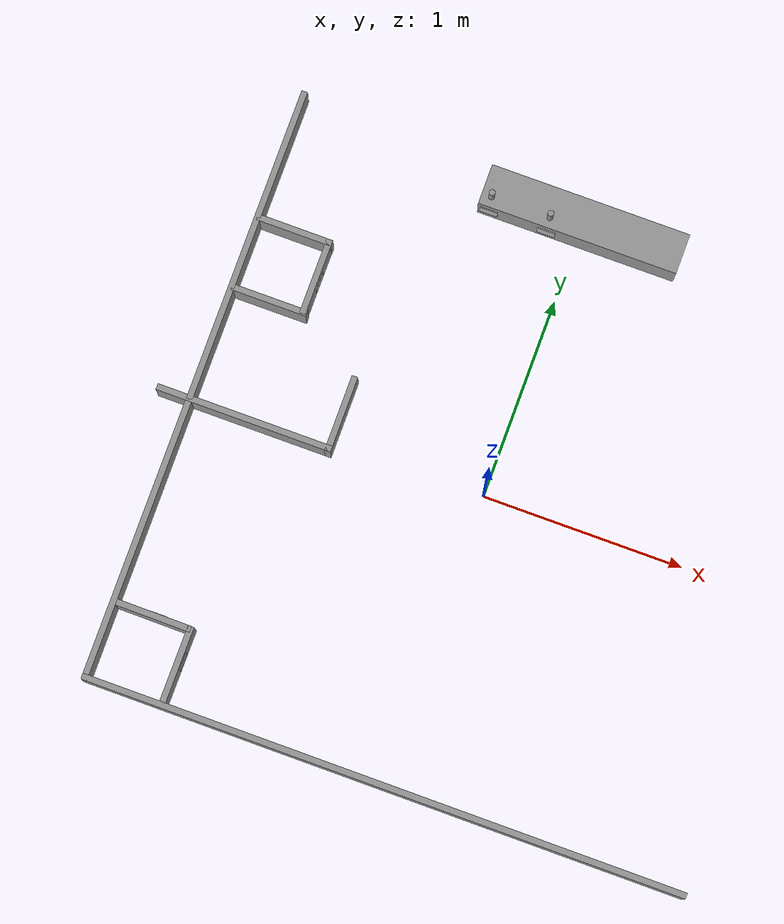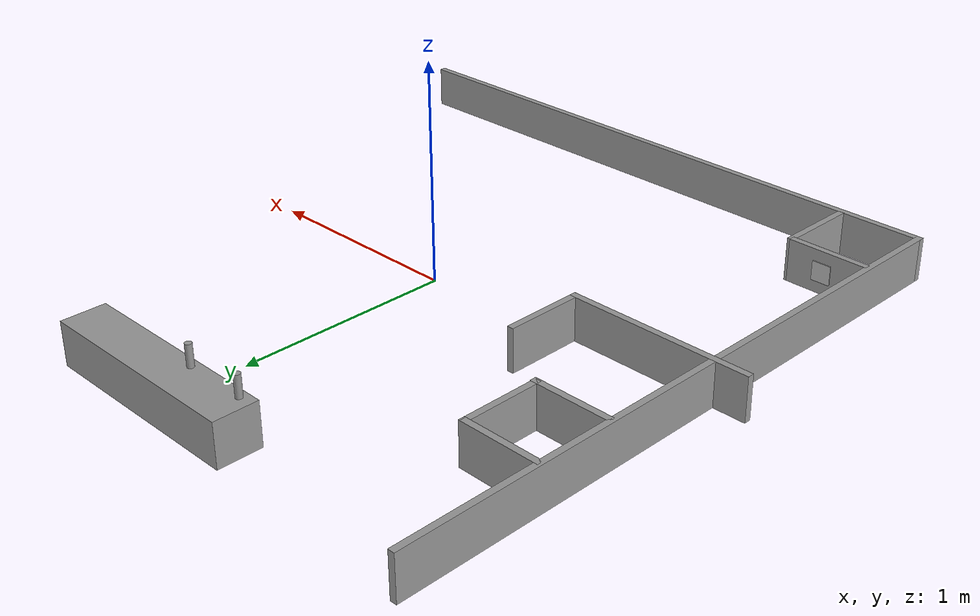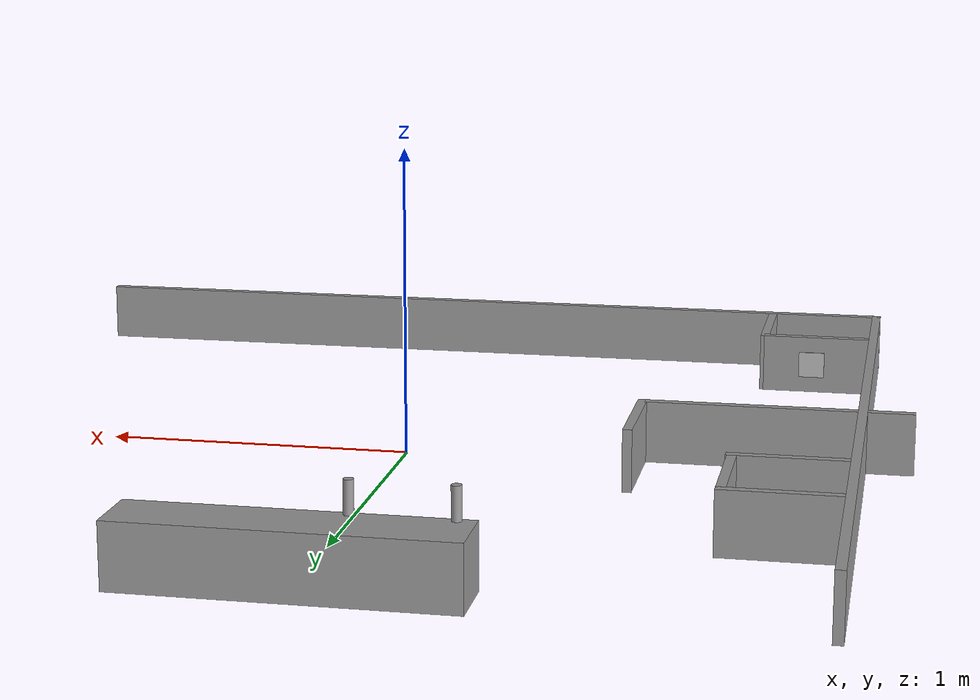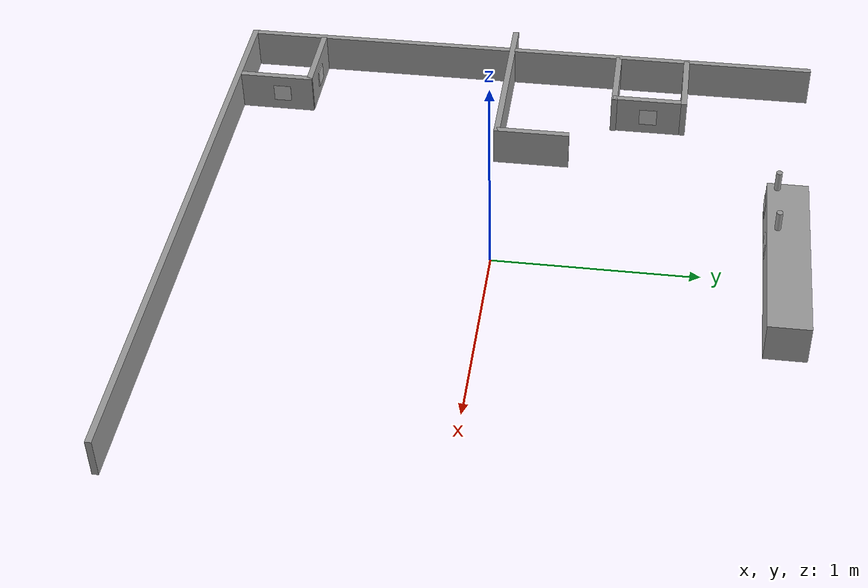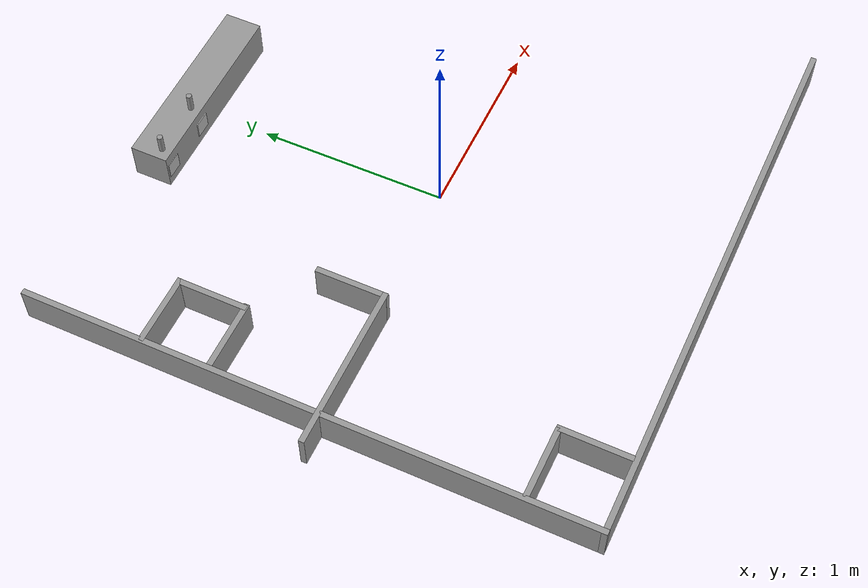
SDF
<sdf version="1.6">
 <model name="course">
  <link name="Wall_11">
   <pose>-0.764031 0.114894 0 0 0 -1.5708</pose>
   <inertial>
    <inertia><ixx>1</ixx><ixy>0</ixy><ixz>0</ixz><iyy>1</iyy><iyz>0</iyz><izz>1</izz></inertia>
    <mass>1</mass>
   </inertial>
   <visual name="Wall_11_Visual">
    <pose>0 0 0.1 0 -0 0</pose>
    <geometry><box><size>0.380343 0.03 0.2</size></box></geometry>
    <material>
     <script><uri>file://media/materials/scripts/gazebo.material</uri><name>Gazebo/Grey</name></script>
     <ambient>1 1 1 1</ambient>
     <diffuse>0.7 0.7 0.7 1</diffuse>
     <specular>0.01 0.01 0.01 1</specular>
     <emissive>0 0 0 1</emissive>
    </material>
   </visual>
   <collision name="Wall_11_Collision">
    <pose>0 0 0.1 0 -0 0</pose>
    <geometry><box><size>0.380343 0.03 0.2</size></box></geometry>
    <surface>
     <friction>
      <ode><mu>1</mu><mu2>1</mu2><fdir1>0 0 0</fdir1><slip1>0</slip1><slip2>0</slip2></ode>
      <torsional>
       <coefficient>1</coefficient>
       <patch_radius>0</patch_radius>
       <surface_radius>0</surface_radius>
       <use_patch_radius>1</use_patch_radius>
       <ode><slip>0</slip></ode>
      </torsional>
     </friction>
     <bounce><restitution_coefficient>0</restitution_coefficient><threshold>1e+06</threshold></bounce>
     <contact>
      <collide_without_contact>0</collide_without_contact>
      <collide_without_contact_bitmask>1</collide_without_contact_bitmask>
      <collide_bitmask>1</collide_bitmask>
      <ode>
       <soft_cfm>0</soft_cfm>
       <soft_erp>0.2</soft_erp>
       <kp>1e+13</kp>
       <kd>1</kd>
       <max_vel>0.01</max_vel>
       <min_depth>0</min_depth>
      </ode>
      <bullet>
       <split_impulse>1</split_impulse>
       <split_impulse_penetration_threshold>-0.01</split_impulse_penetration_threshold>
       <soft_cfm>0</soft_cfm>
       <soft_erp>0.2</soft_erp>
       <kp>1e+13</kp>
       <kd>1</kd>
      </bullet>
     </contact>
    </surface>
   </collision>
   <static>1</static>
  </link>
  <link name="Wall_11_clone">
   <pose>-1.27339 0.511234 0 0 -0 -0.0008</pose>
   <inertial>
    <inertia><ixx>1</ixx><ixy>0</ixy><ixz>0</ixz><iyy>1</iyy><iyz>0</iyz><izz>1</izz></inertia>
    <mass>1</mass>
   </inertial>
   <visual name="Wall_11_Visual">
    <pose>0 0 0.1 0 -0 0</pose>
    <geometry><box><size>0.380343 0.03 0.2</size></box></geometry>
    <material>
     <script><uri>file://media/materials/scripts/gazebo.material</uri><name>Gazebo/Grey</name></script>
     <ambient>1 1 1 1</ambient>
     <diffuse>0.7 0.7 0.7 1</diffuse>
     <specular>0.01 0.01 0.01 1</specular>
     <emissive>0 0 0 1</emissive>
     <shader type="pixel"/>
    </material>
   </visual>
   <collision name="Wall_11_Collision">
    <pose>0 0 0.1 0 -0 0</pose>
    <geometry><box><size>0.380343 0.03 0.2</size></box></geometry>
    <surface>
     <friction>
      <ode><mu>1</mu><mu2>1</mu2><fdir1>0 0 0</fdir1><slip1>0</slip1><slip2>0</slip2></ode>
      <torsional>
       <coefficient>1</coefficient>
       <patch_radius>0</patch_radius>
       <surface_radius>0</surface_radius>
       <use_patch_radius>1</use_patch_radius>
       <ode><slip>0</slip></ode>
      </torsional>
     </friction>
     <bounce><restitution_coefficient>0</restitution_coefficient><threshold>1e+06</threshold></bounce>
     <contact>
      <collide_without_contact>0</collide_without_contact>
      <collide_without_contact_bitmask>1</collide_without_contact_bitmask>
      <collide_bitmask>1</collide_bitmask>
      <ode>
       <soft_cfm>0</soft_cfm>
       <soft_erp>0.2</soft_erp>
       <kp>1e+13</kp>
       <kd>1</kd>
       <max_vel>0.01</max_vel>
       <min_depth>0</min_depth>
      </ode>
      <bullet>
       <split_impulse>1</split_impulse>
       <split_impulse_penetration_threshold>-0.01</split_impulse_penetration_threshold>
       <soft_cfm>0</soft_cfm>
       <soft_erp>0.2</soft_erp>
       <kp>1e+13</kp>
       <kd>1</kd>
      </bullet>
     </contact>
    </surface>
   </collision>
   <static>1</static>
  </link>
  <link name="Wall_11_clone_clone">
   <pose>-1.10256 0.692997 0 0 -0 1.5692</pose>
   <inertial>
    <inertia><ixx>1</ixx><ixy>0</ixy><ixz>0</ixz><iyy>1</iyy><iyz>0</iyz><izz>1</izz></inertia>
    <mass>1</mass>
   </inertial>
   <visual name="Wall_11_Visual">
    <pose>0 0 0.1 0 -0 0</pose>
    <geometry><box><size>0.380343 0.03 0.2</size></box></geometry>
    <material>
     <script><uri>file://media/materials/scripts/gazebo.material</uri><name>Gazebo/Grey</name></script>
     <ambient>1 1 1 1</ambient>
     <diffuse>0.7 0.7 0.7 1</diffuse>
     <specular>0.01 0.01 0.01 1</specular>
     <emissive>0 0 0 1</emissive>
     <shader type="pixel"/>
    </material>
   </visual>
   <collision name="Wall_11_Collision">
    <pose>0 0 0.1 0 -0 0</pose>
    <geometry><box><size>0.380343 0.03 0.2</size></box></geometry>
    <surface>
     <friction>
      <ode><mu>1</mu><mu2>1</mu2><fdir1>0 0 0</fdir1><slip1>0</slip1><slip2>0</slip2></ode>
      <torsional>
       <coefficient>1</coefficient>
       <patch_radius>0</patch_radius>
       <surface_radius>0</surface_radius>
       <use_patch_radius>1</use_patch_radius>
       <ode><slip>0</slip></ode>
      </torsional>
     </friction>
     <bounce><restitution_coefficient>0</restitution_coefficient><threshold>1e+06</threshold></bounce>
     <contact>
      <collide_without_contact>0</collide_without_contact>
      <collide_without_contact_bitmask>1</collide_without_contact_bitmask>
      <collide_bitmask>1</collide_bitmask>
      <ode>
       <soft_cfm>0</soft_cfm>
       <soft_erp>0.2</soft_erp>
       <kp>1e+13</kp>
       <kd>1</kd>
       <max_vel>0.01</max_vel>
       <min_depth>0</min_depth>
      </ode>
      <bullet>
       <split_impulse>1</split_impulse>
       <split_impulse_penetration_threshold>-0.01</split_impulse_penetration_threshold>
       <soft_cfm>0</soft_cfm>
       <soft_erp>0.2</soft_erp>
       <kp>1e+13</kp>
       <kd>1</kd>
      </bullet>
     </contact>
    </surface>
   </collision>
   <static>1</static>
  </link>
  <link name="Wall_11_clone_clone_clone">
   <pose>-1.27687 0.869348 0 0 -0 3.1392</pose>
   <inertial>
    <inertia><ixx>1</ixx><ixy>0</ixy><ixz>0</ixz><iyy>1</iyy><iyz>0</iyz><izz>1</izz></inertia>
    <mass>1</mass>
   </inertial>
   <visual name="Wall_11_Visual">
    <pose>0 0 0.1 0 -0 0</pose>
    <geometry><box><size>0.380343 0.03 0.2</size></box></geometry>
    <material>
     <script><uri>file://media/materials/scripts/gazebo.material</uri><name>Gazebo/Grey</name></script>
     <ambient>1 1 1 1</ambient>
     <diffuse>0.7 0.7 0.7 1</diffuse>
     <specular>0.01 0.01 0.01 1</specular>
     <emissive>0 0 0 1</emissive>
     <shader type="pixel"/>
    </material>
   </visual>
   <collision name="Wall_11_Collision">
    <pose>0 0 0.1 0 -0 0</pose>
    <geometry><box><size>0.380343 0.03 0.2</size></box></geometry>
    <surface>
     <friction>
      <ode><mu>1</mu><mu2>1</mu2><fdir1>0 0 0</fdir1><slip1>0</slip1><slip2>0</slip2></ode>
      <torsional>
       <coefficient>1</coefficient>
       <patch_radius>0</patch_radius>
       <surface_radius>0</surface_radius>
       <use_patch_radius>1</use_patch_radius>
       <ode><slip>0</slip></ode>
      </torsional>
     </friction>
     <bounce><restitution_coefficient>0</restitution_coefficient><threshold>1e+06</threshold></bounce>
     <contact>
      <collide_without_contact>0</collide_without_contact>
      <collide_without_contact_bitmask>1</collide_without_contact_bitmask>
      <collide_bitmask>1</collide_bitmask>
      <ode>
       <soft_cfm>0</soft_cfm>
       <soft_erp>0.2</soft_erp>
       <kp>1e+13</kp>
       <kd>1</kd>
       <max_vel>0.01</max_vel>
       <min_depth>0</min_depth>
      </ode>
      <bullet>
       <split_impulse>1</split_impulse>
       <split_impulse_penetration_threshold>-0.01</split_impulse_penetration_threshold>
       <soft_cfm>0</soft_cfm>
       <soft_erp>0.2</soft_erp>
       <kp>1e+13</kp>
       <kd>1</kd>
      </bullet>
     </contact>
    </surface>
   </collision>
   <static>1</static>
  </link>
  <link name="Wall_11_clone_clone_clone_clone_clone_clone_clone_clone">
   <pose>-1.07993 -1.26306 0 0 0 -1.57716</pose>
   <inertial>
    <inertia><ixx>1</ixx><ixy>0</ixy><ixz>0</ixz><iyy>1</iyy><iyz>0</iyz><izz>1</izz></inertia>
    <mass>1</mass>
   </inertial>
   <visual name="Wall_11_Visual">
    <pose>0 0 0.1 0 -0 0</pose>
    <geometry><box><size>0.380343 0.03 0.2</size></box></geometry>
    <material>
     <script><uri>file://media/materials/scripts/gazebo.material</uri><name>Gazebo/Grey</name></script>
     <ambient>1 1 1 1</ambient>
     <diffuse>0.7 0.7 0.7 1</diffuse>
     <specular>0.01 0.01 0.01 1</specular>
     <emissive>0 0 0 1</emissive>
     <shader type="pixel"/>
    </material>
   </visual>
   <collision name="Wall_11_Collision">
    <pose>0 0 0.1 0 -0 0</pose>
    <geometry><box><size>0.380343 0.03 0.2</size></box></geometry>
    <surface>
     <friction>
      <ode><mu>1</mu><mu2>1</mu2><fdir1>0 0 0</fdir1><slip1>0</slip1><slip2>0</slip2></ode>
      <torsional>
       <coefficient>1</coefficient>
       <patch_radius>0</patch_radius>
       <surface_radius>0</surface_radius>
       <use_patch_radius>1</use_patch_radius>
       <ode><slip>0</slip></ode>
      </torsional>
     </friction>
     <bounce><restitution_coefficient>0</restitution_coefficient><threshold>1e+06</threshold></bounce>
     <contact>
      <collide_without_contact>0</collide_without_contact>
      <collide_without_contact_bitmask>1</collide_without_contact_bitmask>
      <collide_bitmask>1</collide_bitmask>
      <ode>
       <soft_cfm>0</soft_cfm>
       <soft_erp>0.2</soft_erp>
       <kp>1e+13</kp>
       <kd>1</kd>
       <max_vel>0.01</max_vel>
       <min_depth>0</min_depth>
      </ode>
      <bullet>
       <split_impulse>1</split_impulse>
       <split_impulse_penetration_threshold>-0.01</split_impulse_penetration_threshold>
       <soft_cfm>0</soft_cfm>
       <soft_erp>0.2</soft_erp>
       <kp>1e+13</kp>
       <kd>1</kd>
      </bullet>
     </contact>
    </surface>
   </collision>
   <static>1</static>
  </link>
  <link name="Wall_11_clone_clone_clone_clone_clone_clone_clone_clone_clone">
   <pose>-1.26695 -1.08537 0 -0 -0 -0.00716</pose>
   <inertial>
    <inertia><ixx>1</ixx><ixy>0</ixy><ixz>0</ixz><iyy>1</iyy><iyz>0</iyz><izz>1</izz></inertia>
    <mass>1</mass>
   </inertial>
   <visual name="Wall_11_Visual">
    <pose>0 0 0.1 0 -0 0</pose>
    <geometry><box><size>0.380343 0.03 0.2</size></box></geometry>
    <material>
     <script><uri>file://media/materials/scripts/gazebo.material</uri><name>Gazebo/Grey</name></script>
     <ambient>1 1 1 1</ambient>
     <diffuse>0.7 0.7 0.7 1</diffuse>
     <specular>0.01 0.01 0.01 1</specular>
     <emissive>0 0 0 1</emissive>
     <shader type="pixel"/>
    </material>
   </visual>
   <collision name="Wall_11_Collision">
    <pose>0 0 0.1 0 -0 0</pose>
    <geometry><box><size>0.380343 0.03 0.2</size></box></geometry>
    <surface>
     <friction>
      <ode><mu>1</mu><mu2>1</mu2><fdir1>0 0 0</fdir1><slip1>0</slip1><slip2>0</slip2></ode>
      <torsional>
       <coefficient>1</coefficient>
       <patch_radius>0</patch_radius>
       <surface_radius>0</surface_radius>
       <use_patch_radius>1</use_patch_radius>
       <ode><slip>0</slip></ode>
      </torsional>
     </friction>
     <bounce><restitution_coefficient>0</restitution_coefficient><threshold>1e+06</threshold></bounce>
     <contact>
      <collide_without_contact>0</collide_without_contact>
      <collide_without_contact_bitmask>1</collide_without_contact_bitmask>
      <collide_bitmask>1</collide_bitmask>
      <ode>
       <soft_cfm>0</soft_cfm>
       <soft_erp>0.2</soft_erp>
       <kp>1e+13</kp>
       <kd>1</kd>
       <max_vel>0.01</max_vel>
       <min_depth>0</min_depth>
      </ode>
      <bullet>
       <split_impulse>1</split_impulse>
       <split_impulse_penetration_threshold>-0.01</split_impulse_penetration_threshold>
       <soft_cfm>0</soft_cfm>
       <soft_erp>0.2</soft_erp>
       <kp>1e+13</kp>
       <kd>1</kd>
      </bullet>
     </contact>
    </surface>
   </collision>
   <static>1</static>
  </link>
  <link name="Wall_12">
   <pose>-1.18903 -0.060106 -0 0 -0 3.14159</pose>
   <inertial>
    <inertia><ixx>1</ixx><ixy>0</ixy><ixz>0</ixz><iyy>1</iyy><iyz>0</iyz><izz>1</izz></inertia>
    <mass>1</mass>
   </inertial>
   <visual name="Wall_12_Visual">
    <pose>0 0 0.1 0 -0 0</pose>
    <geometry><box><size>0.879643 0.03 0.2</size></box></geometry>
    <material>
     <script><uri>file://media/materials/scripts/gazebo.material</uri><name>Gazebo/Grey</name></script>
     <ambient>1 1 1 1</ambient>
     <diffuse>0.7 0.7 0.7 1</diffuse>
     <specular>0.01 0.01 0.01 1</specular>
     <emissive>0 0 0 1</emissive>
    </material>
   </visual>
   <collision name="Wall_12_Collision">
    <pose>0 0 0.1 0 -0 0</pose>
    <geometry><box><size>0.879643 0.03 0.2</size></box></geometry>
    <surface>
     <friction>
      <ode><mu>1</mu><mu2>1</mu2><fdir1>0 0 0</fdir1><slip1>0</slip1><slip2>0</slip2></ode>
      <torsional>
       <coefficient>1</coefficient>
       <patch_radius>0</patch_radius>
       <surface_radius>0</surface_radius>
       <use_patch_radius>1</use_patch_radius>
       <ode><slip>0</slip></ode>
      </torsional>
     </friction>
     <bounce><restitution_coefficient>0</restitution_coefficient><threshold>1e+06</threshold></bounce>
     <contact>
      <collide_without_contact>0</collide_without_contact>
      <collide_without_contact_bitmask>1</collide_without_contact_bitmask>
      <collide_bitmask>1</collide_bitmask>
      <ode>
       <soft_cfm>0</soft_cfm>
       <soft_erp>0.2</soft_erp>
       <kp>1e+13</kp>
       <kd>1</kd>
       <max_vel>0.01</max_vel>
       <min_depth>0</min_depth>
      </ode>
      <bullet>
       <split_impulse>1</split_impulse>
       <split_impulse_penetration_threshold>-0.01</split_impulse_penetration_threshold>
       <soft_cfm>0</soft_cfm>
       <soft_erp>0.2</soft_erp>
       <kp>1e+13</kp>
       <kd>1</kd>
      </bullet>
     </contact>
    </surface>
   </collision>
   <static>1</static>
  </link>
  <link name="Wall_4">
   <pose>0.020969 -1.46511 0 0 -0 3.14159</pose>
   <inertial>
    <inertia><ixx>1</ixx><ixy>0</ixy><ixz>0</ixz><iyy>1</iyy><iyz>0</iyz><izz>1</izz></inertia>
    <mass>1</mass>
   </inertial>
   <visual name="Wall_4_Visual">
    <pose>0 0 0.1 0 -0 0</pose>
    <geometry><box><size>3 0.03 0.2</size></box></geometry>
    <material>
     <script><uri>file://media/materials/scripts/gazebo.material</uri><name>Gazebo/Grey</name></script>
     <ambient>1 1 1 1</ambient>
     <diffuse>0.7 0.7 0.7 1</diffuse>
     <specular>0.01 0.01 0.01 1</specular>
     <emissive>0 0 0 1</emissive>
    </material>
   </visual>
   <collision name="Wall_4_Collision">
    <pose>0 0 0.1 0 -0 0</pose>
    <geometry><box><size>3 0.03 0.2</size></box></geometry>
    <surface>
     <friction>
      <ode><mu>1</mu><mu2>1</mu2><fdir1>0 0 0</fdir1><slip1>0</slip1><slip2>0</slip2></ode>
      <torsional>
       <coefficient>1</coefficient>
       <patch_radius>0</patch_radius>
       <surface_radius>0</surface_radius>
       <use_patch_radius>1</use_patch_radius>
       <ode><slip>0</slip></ode>
      </torsional>
     </friction>
     <bounce><restitution_coefficient>0</restitution_coefficient><threshold>1e+06</threshold></bounce>
     <contact>
      <collide_without_contact>0</collide_without_contact>
      <collide_without_contact_bitmask>1</collide_without_contact_bitmask>
      <collide_bitmask>1</collide_bitmask>
      <ode>
       <soft_cfm>0</soft_cfm>
       <soft_erp>0.2</soft_erp>
       <kp>1e+13</kp>
       <kd>1</kd>
       <max_vel>0.01</max_vel>
       <min_depth>0</min_depth>
      </ode>
      <bullet>
       <split_impulse>1</split_impulse>
       <split_impulse_penetration_threshold>-0.01</split_impulse_penetration_threshold>
       <soft_cfm>0</soft_cfm>
       <soft_erp>0.2</soft_erp>
       <kp>1e+13</kp>
       <kd>1</kd>
      </bullet>
     </contact>
    </surface>
   </collision>
   <static>1</static>
  </link>
  <link name="Wall_7">
   <pose>-1.46403 0.019894 -0 0 -0 1.5708</pose>
   <inertial>
    <inertia><ixx>1</ixx><ixy>0</ixy><ixz>0</ixz><iyy>1</iyy><iyz>0</iyz><izz>1</izz></inertia>
    <mass>1</mass>
   </inertial>
   <visual name="Wall_7_Visual">
    <pose>0 0 0.1 0 -0 0</pose>
    <geometry><box><size>3 0.03 0.2</size></box></geometry>
    <material>
     <script><uri>file://media/materials/scripts/gazebo.material</uri><name>Gazebo/Grey</name></script>
     <ambient>1 1 1 1</ambient>
     <diffuse>0.7 0.7 0.7 1</diffuse>
     <specular>0.01 0.01 0.01 1</specular>
     <emissive>0 0 0 1</emissive>
    </material>
   </visual>
   <collision name="Wall_7_Collision">
    <pose>0 0 0.1 0 -0 0</pose>
    <geometry><box><size>3 0.03 0.2</size></box></geometry>
    <surface>
     <friction>
      <ode><mu>1</mu><mu2>1</mu2><fdir1>0 0 0</fdir1><slip1>0</slip1><slip2>0</slip2></ode>
      <torsional>
       <coefficient>1</coefficient>
       <patch_radius>0</patch_radius>
       <surface_radius>0</surface_radius>
       <use_patch_radius>1</use_patch_radius>
       <ode><slip>0</slip></ode>
      </torsional>
     </friction>
     <bounce><restitution_coefficient>0</restitution_coefficient><threshold>1e+06</threshold></bounce>
     <contact>
      <collide_without_contact>0</collide_without_contact>
      <collide_without_contact_bitmask>1</collide_without_contact_bitmask>
      <collide_bitmask>1</collide_bitmask>
      <ode>
       <soft_cfm>0</soft_cfm>
       <soft_erp>0.2</soft_erp>
       <kp>1e+13</kp>
       <kd>1</kd>
       <max_vel>0.01</max_vel>
       <min_depth>0</min_depth>
      </ode>
      <bullet>
       <split_impulse>1</split_impulse>
       <split_impulse_penetration_threshold>-0.01</split_impulse_penetration_threshold>
       <soft_cfm>0</soft_cfm>
       <soft_erp>0.2</soft_erp>
       <kp>1e+13</kp>
       <kd>1</kd>
      </bullet>
     </contact>
    </surface>
   </collision>
   <static>1</static>
  </link>
  <link name="link_0">
   <pose>0.001108 1.39034 0.1 0 -0 1.57</pose>
   <inertial>
    <mass>1</mass>
    <inertia>
     <ixx>0.166667</ixx>
     <ixy>0</ixy>
     <ixz>0</ixz>
     <iyy>0.166667</iyy>
     <iyz>0</iyz>
     <izz>0.166667</izz>
    </inertia>
   </inertial>
   <visual name="visual">
    <geometry><box><size>0.2 1 0.2</size></box></geometry>
    <material>
     <lighting>1</lighting>
     <script><uri>file://media/materials/scripts/gazebo.material</uri><name>Gazebo/Grey</name></script>
     <ambient>0.3 0.3 0.3 1</ambient>
     <diffuse>0.7 0.7 0.7 1</diffuse>
     <specular>0.01 0.01 0.01 1</specular>
     <emissive>0 0 0 1</emissive>
     <shader type="vertex"><normal_map>__default__</normal_map></shader>
    </material>
   </visual>
   <collision name="collision">
    <geometry><box><size>0.2 1 0.2</size></box></geometry>
    <surface>
     <friction>
      <ode><mu>1</mu><mu2>1</mu2><fdir1>0 0 0</fdir1><slip1>0</slip1><slip2>0</slip2></ode>
      <torsional>
       <coefficient>1</coefficient>
       <patch_radius>0</patch_radius>
       <surface_radius>0</surface_radius>
       <use_patch_radius>1</use_patch_radius>
       <ode><slip>0</slip></ode>
      </torsional>
     </friction>
     <bounce><restitution_coefficient>0</restitution_coefficient><threshold>1e+06</threshold></bounce>
     <contact>
      <collide_without_contact>0</collide_without_contact>
      <collide_without_contact_bitmask>1</collide_without_contact_bitmask>
      <collide_bitmask>1</collide_bitmask>
      <ode>
       <soft_cfm>0</soft_cfm>
       <soft_erp>0.2</soft_erp>
       <kp>1e+13</kp>
       <kd>1</kd>
       <max_vel>0.01</max_vel>
       <min_depth>0</min_depth>
      </ode>
      <bullet>
       <split_impulse>1</split_impulse>
       <split_impulse_penetration_threshold>-0.01</split_impulse_penetration_threshold>
       <soft_cfm>0</soft_cfm>
       <soft_erp>0.2</soft_erp>
       <kp>1e+13</kp>
       <kd>1</kd>
      </bullet>
     </contact>
    </surface>
   </collision>
   <static>1</static>
  </link>
  <link name="link_0_0_clone_clone">
   <pose>-0.153061 1.3384 0.26 0 0 -1.57319</pose>
   <inertial>
    <mass>0.00160463</mass>
    <inertia>
     <ixx>9.53e-06</ixx>
     <ixy>0</ixy>
     <ixz>0</ixz>
     <iyy>9.53e-06</iyy>
     <iyz>0</iyz>
     <izz>1.25e-06</izz>
    </inertia>
   </inertial>
   <visual name="visual_0">
    <geometry><cylinder><radius>0.015</radius><length>0.1</length></cylinder></geometry>
    <material>
     <lighting>1</lighting>
     <script><uri>file://media/materials/scripts/gazebo.material</uri><name>Gazebo/Grey</name></script>
     <ambient>0.3 0.3 0.3 1</ambient>
     <diffuse>0.7 0.7 0.7 1</diffuse>
     <specular>0.01 0.01 0.01 1</specular>
     <emissive>0 0 0 1</emissive>
     <shader type="vertex"><normal_map>__default__</normal_map></shader>
    </material>
   </visual>
   <collision name="collision">
    <geometry><cylinder><radius>0.015</radius><length>0.1</length></cylinder></geometry>
    <surface>
     <friction>
      <ode><mu>1</mu><mu2>1</mu2><fdir1>0 0 0</fdir1><slip1>0</slip1><slip2>0</slip2></ode>
      <torsional>
       <coefficient>1</coefficient>
       <patch_radius>0</patch_radius>
       <surface_radius>0</surface_radius>
       <use_patch_radius>1</use_patch_radius>
       <ode><slip>0</slip></ode>
      </torsional>
     </friction>
     <bounce><restitution_coefficient>0</restitution_coefficient><threshold>1e+06</threshold></bounce>
     <contact>
      <collide_without_contact>0</collide_without_contact>
      <collide_without_contact_bitmask>1</collide_without_contact_bitmask>
      <collide_bitmask>1</collide_bitmask>
      <ode>
       <soft_cfm>0</soft_cfm>
       <soft_erp>0.2</soft_erp>
       <kp>1e+13</kp>
       <kd>1</kd>
       <max_vel>0.01</max_vel>
       <min_depth>0</min_depth>
      </ode>
      <bullet>
       <split_impulse>1</split_impulse>
       <split_impulse_penetration_threshold>-0.01</split_impulse_penetration_threshold>
       <soft_cfm>0</soft_cfm>
       <soft_erp>0.2</soft_erp>
       <kp>1e+13</kp>
       <kd>1</kd>
      </bullet>
     </contact>
    </surface>
   </collision>
  </link>
  <link name="link_0_0_clone_clone_clone">
   <pose>-0.448091 1.3384 0.26 0 -0 -0.00319</pose>
   <inertial>
    <mass>0.00160463</mass>
    <inertia>
     <ixx>9.53e-06</ixx>
     <ixy>0</ixy>
     <ixz>0</ixz>
     <iyy>9.53e-06</iyy>
     <iyz>0</iyz>
     <izz>1.25e-06</izz>
    </inertia>
   </inertial>
   <visual name="visual_0">
    <geometry><cylinder><radius>0.015</radius><length>0.1</length></cylinder></geometry>
    <material>
     <lighting>1</lighting>
     <script><uri>file://media/materials/scripts/gazebo.material</uri><name>Gazebo/Grey</name></script>
     <ambient>0.3 0.3 0.3 1</ambient>
     <diffuse>0.7 0.7 0.7 1</diffuse>
     <specular>0.01 0.01 0.01 1</specular>
     <emissive>0 0 0 1</emissive>
     <shader type="vertex"><normal_map>__default__</normal_map></shader>
    </material>
   </visual>
   <collision name="collision">
    <geometry><cylinder><radius>0.015</radius><length>0.1</length></cylinder></geometry>
    <surface>
     <friction>
      <ode><mu>1</mu><mu2>1</mu2><fdir1>0 0 0</fdir1><slip1>0</slip1><slip2>0</slip2></ode>
      <torsional>
       <coefficient>1</coefficient>
       <patch_radius>0</patch_radius>
       <surface_radius>0</surface_radius>
       <use_patch_radius>1</use_patch_radius>
       <ode><slip>0</slip></ode>
      </torsional>
     </friction>
     <bounce><restitution_coefficient>0</restitution_coefficient><threshold>1e+06</threshold></bounce>
     <contact>
      <collide_without_contact>0</collide_without_contact>
      <collide_without_contact_bitmask>1</collide_without_contact_bitmask>
      <collide_bitmask>1</collide_bitmask>
      <ode>
       <soft_cfm>0</soft_cfm>
       <soft_erp>0.2</soft_erp>
       <kp>1e+13</kp>
       <kd>1</kd>
       <max_vel>0.01</max_vel>
       <min_depth>0</min_depth>
      </ode>
      <bullet>
       <split_impulse>1</split_impulse>
       <split_impulse_penetration_threshold>-0.01</split_impulse_penetration_threshold>
       <soft_cfm>0</soft_cfm>
       <soft_erp>0.2</soft_erp>
       <kp>1e+13</kp>
       <kd>1</kd>
      </bullet>
     </contact>
    </surface>
   </collision>
  </link>
  <model name="armarker00">
   <link name="link">
    <pose>0 0 0.1 0 -0 0</pose>
    <inertial>
     <mass>1</mass>
     <inertia>
      <ixx>0.166667</ixx>
      <ixy>0</ixy>
      <ixz>0</ixz>
      <iyy>0.166667</iyy>
      <iyz>0</iyz>
      <izz>0.166667</izz>
     </inertia>
    </inertial>
    <visual name="visual">
     <geometry><box><size>0.09 0.01 0.09</size></box></geometry>
     <material>
      <script>
       <uri>model://turtlebot3_home_service/armarker00/materials/scripts</uri>
       <uri>model://turtlebot3_home_service/armarker00/materials/textures</uri>
       <name>armarker00</name>
      </script>
     </material>
    </visual>
    <collision name="collision">
     <geometry><box><size>0.09 0.01 0.09</size></box></geometry>
     <surface>
      <friction>
       <ode><mu>1</mu><mu2>1</mu2><fdir1>0 0 0</fdir1><slip1>0</slip1><slip2>0</slip2></ode>
       <torsional>
        <coefficient>1</coefficient>
        <patch_radius>0</patch_radius>
        <surface_radius>0</surface_radius>
        <use_patch_radius>1</use_patch_radius>
        <ode><slip>0</slip></ode>
       </torsional>
      </friction>
      <bounce><restitution_coefficient>0</restitution_coefficient><threshold>1e+06</threshold></bounce>
      <contact>
       <collide_without_contact>0</collide_without_contact>
       <collide_without_contact_bitmask>1</collide_without_contact_bitmask>
       <collide_bitmask>1</collide_bitmask>
       <ode>
        <soft_cfm>0</soft_cfm>
        <soft_erp>0.2</soft_erp>
        <kp>1e+13</kp>
        <kd>1</kd>
        <max_vel>0.01</max_vel>
        <min_depth>0</min_depth>
       </ode>
       <bullet>
        <split_impulse>1</split_impulse>
        <split_impulse_penetration_threshold>-0.01</split_impulse_penetration_threshold>
        <soft_cfm>0</soft_cfm>
        <soft_erp>0.2</soft_erp>
        <kp>1e+13</kp>
        <kd>1</kd>
       </bullet>
      </contact>
     </surface>
    </collision>
   </link>
   <static>1</static>
   <pose>-0.443295 1.29206 0 0 0 0</pose>
  </model>
  <model name="armarker01">
   <link name="link">
    <pose>0 0 0.1 0 -0 0</pose>
    <inertial>
     <mass>1</mass>
     <inertia>
      <ixx>0.166667</ixx>
      <ixy>0</ixy>
      <ixz>0</ixz>
      <iyy>0.166667</iyy>
      <iyz>0</iyz>
      <izz>0.166667</izz>
     </inertia>
    </inertial>
    <visual name="visual">
     <geometry><box><size>0.09 0.01 0.09</size></box></geometry>
     <material>
      <script>
       <uri>model://turtlebot3_home_service/armarker01/materials/scripts</uri>
       <uri>model://turtlebot3_home_service/armarker01/materials/textures</uri>
       <name>armarker01</name>
      </script>
     </material>
    </visual>
    <collision name="collision">
     <geometry><box><size>0.09 0.01 0.09</size></box></geometry>
     <surface>
      <friction>
       <ode><mu>1</mu><mu2>1</mu2><fdir1>0 0 0</fdir1><slip1>0</slip1><slip2>0</slip2></ode>
       <torsional>
        <coefficient>1</coefficient>
        <patch_radius>0</patch_radius>
        <surface_radius>0</surface_radius>
        <use_patch_radius>1</use_patch_radius>
        <ode><slip>0</slip></ode>
       </torsional>
      </friction>
      <bounce><restitution_coefficient>0</restitution_coefficient><threshold>1e+06</threshold></bounce>
      <contact>
       <collide_without_contact>0</collide_without_contact>
       <collide_without_contact_bitmask>1</collide_without_contact_bitmask>
       <collide_bitmask>1</collide_bitmask>
       <ode>
        <soft_cfm>0</soft_cfm>
        <soft_erp>0.2</soft_erp>
        <kp>1e+13</kp>
        <kd>1</kd>
        <max_vel>0.01</max_vel>
        <min_depth>0</min_depth>
       </ode>
       <bullet>
        <split_impulse>1</split_impulse>
        <split_impulse_penetration_threshold>-0.01</split_impulse_penetration_threshold>
        <soft_cfm>0</soft_cfm>
        <soft_erp>0.2</soft_erp>
        <kp>1e+13</kp>
        <kd>1</kd>
       </bullet>
      </contact>
     </surface>
    </collision>
   </link>
   <static>1</static>
   <pose>-0.151432 1.29014 -0 0 0 0</pose>
  </model>
  <model name="armarker04">
   <link name="link">
    <pose>0 0 0.1 0 -0 0</pose>
    <inertial>
     <mass>1</mass>
     <inertia>
      <ixx>0.166667</ixx>
      <ixy>0</ixy>
      <ixz>0</ixz>
      <iyy>0.166667</iyy>
      <iyz>0</iyz>
      <izz>0.166667</izz>
     </inertia>
    </inertial>
    <visual name="visual">
     <geometry><box><size>0.09 0.01 0.09</size></box></geometry>
     <material>
      <script>
       <uri>model://turtlebot3_home_service/armarker04/materials/scripts</uri>
       <uri>model://turtlebot3_home_service/armarker04/materials/textures</uri>
       <name>armarker04</name>
      </script>
     </material>
    </visual>
    <collision name="collision">
     <geometry><box><size>0.09 0.01 0.09</size></box></geometry>
     <surface>
      <friction>
       <ode><mu>1</mu><mu2>1</mu2><fdir1>0 0 0</fdir1><slip1>0</slip1><slip2>0</slip2></ode>
       <torsional>
        <coefficient>1</coefficient>
        <patch_radius>0</patch_radius>
        <surface_radius>0</surface_radius>
        <use_patch_radius>1</use_patch_radius>
        <ode><slip>0</slip></ode>
       </torsional>
      </friction>
      <bounce><restitution_coefficient>0</restitution_coefficient><threshold>1e+06</threshold></bounce>
      <contact>
       <collide_without_contact>0</collide_without_contact>
       <collide_without_contact_bitmask>1</collide_without_contact_bitmask>
       <collide_bitmask>1</collide_bitmask>
       <ode>
        <soft_cfm>0</soft_cfm>
        <soft_erp>0.2</soft_erp>
        <kp>1e+13</kp>
        <kd>1</kd>
        <max_vel>0.01</max_vel>
        <min_depth>0</min_depth>
       </ode>
       <bullet>
        <split_impulse>1</split_impulse>
        <split_impulse_penetration_threshold>-0.01</split_impulse_penetration_threshold>
        <soft_cfm>0</soft_cfm>
        <soft_erp>0.2</soft_erp>
        <kp>1e+13</kp>
        <kd>1</kd>
       </bullet>
      </contact>
     </surface>
    </collision>
   </link>
   <static>1</static>
   <pose>-1.0889 0.688698 0 0 -0 1.56863</pose>
  </model>
  <model name="armarker07_0">
   <link name="link">
    <pose>0 0 0.1 0 -0 0</pose>
    <inertial>
     <mass>1</mass>
     <inertia>
      <ixx>0.166667</ixx>
      <ixy>0</ixy>
      <ixz>0</ixz>
      <iyy>0.166667</iyy>
      <iyz>0</iyz>
      <izz>0.166667</izz>
     </inertia>
    </inertial>
    <visual name="visual">
     <geometry><box><size>0.09 0.01 0.09</size></box></geometry>
     <material>
      <script>
       <uri>model://turtlebot3_home_service/armarker07/materials/scripts</uri>
       <uri>model://turtlebot3_home_service/armarker07/materials/textures</uri>
       <name>armarker07</name>
      </script>
     </material>
    </visual>
    <collision name="collision">
     <geometry><box><size>0.09 0.01 0.09</size></box></geometry>
     <surface>
      <friction>
       <ode><mu>1</mu><mu2>1</mu2><fdir1>0 0 0</fdir1><slip1>0</slip1><slip2>0</slip2></ode>
       <torsional>
        <coefficient>1</coefficient>
        <patch_radius>0</patch_radius>
        <surface_radius>0</surface_radius>
        <use_patch_radius>1</use_patch_radius>
        <ode><slip>0</slip></ode>
       </torsional>
      </friction>
      <bounce><restitution_coefficient>0</restitution_coefficient><threshold>1e+06</threshold></bounce>
      <contact>
       <collide_without_contact>0</collide_without_contact>
       <collide_without_contact_bitmask>1</collide_without_contact_bitmask>
       <collide_bitmask>1</collide_bitmask>
       <ode>
        <soft_cfm>0</soft_cfm>
        <soft_erp>0.2</soft_erp>
        <kp>1e+13</kp>
        <kd>1</kd>
        <max_vel>0.01</max_vel>
        <min_depth>0</min_depth>
       </ode>
       <bullet>
        <split_impulse>1</split_impulse>
        <split_impulse_penetration_threshold>-0.01</split_impulse_penetration_threshold>
        <soft_cfm>0</soft_cfm>
        <soft_erp>0.2</soft_erp>
        <kp>1e+13</kp>
        <kd>1</kd>
       </bullet>
      </contact>
     </surface>
    </collision>
   </link>
   <static>1</static>
   <pose>-1.24797 -1.07039 -0 0 0 0</pose>
  </model>
  <model name="armarker07_0_clone">
   <link name="link">
    <pose>0 0 0.1 0 -0 0</pose>
    <inertial>
     <mass>1</mass>
     <inertia>
      <ixx>0.166667</ixx>
      <ixy>0</ixy>
      <ixz>0</ixz>
      <iyy>0.166667</iyy>
      <iyz>0</iyz>
      <izz>0.166667</izz>
     </inertia>
    </inertial>
    <visual name="visual">
     <geometry><box><size>0.09 0.01 0.09</size></box></geometry>
     <material>
      <script>
       <uri>model://turtlebot3_home_service/armarker07/materials/scripts</uri>
       <uri>model://turtlebot3_home_service/armarker07/materials/textures</uri>
       <name>armarker07</name>
      </script>
     </material>
    </visual>
    <collision name="collision">
     <geometry><box><size>0.09 0.01 0.09</size></box></geometry>
     <surface>
      <friction>
       <ode><mu>1</mu><mu2>1</mu2><fdir1>0 0 0</fdir1><slip1>0</slip1><slip2>0</slip2></ode>
       <torsional>
        <coefficient>1</coefficient>
        <patch_radius>0</patch_radius>
        <surface_radius>0</surface_radius>
        <use_patch_radius>1</use_patch_radius>
        <ode><slip>0</slip></ode>
       </torsional>
      </friction>
      <bounce><restitution_coefficient>0</restitution_coefficient><threshold>1e+06</threshold></bounce>
      <contact>
       <collide_without_contact>0</collide_without_contact>
       <collide_without_contact_bitmask>1</collide_without_contact_bitmask>
       <collide_bitmask>1</collide_bitmask>
       <ode>
        <soft_cfm>0</soft_cfm>
        <soft_erp>0.2</soft_erp>
        <kp>1e+13</kp>
        <kd>1</kd>
        <max_vel>0.01</max_vel>
        <min_depth>0</min_depth>
       </ode>
       <bullet>
        <split_impulse>1</split_impulse>
        <split_impulse_penetration_threshold>-0.01</split_impulse_penetration_threshold>
        <soft_cfm>0</soft_cfm>
        <soft_erp>0.2</soft_erp>
        <kp>1e+13</kp>
        <kd>1</kd>
       </bullet>
      </contact>
     </surface>
    </collision>
   </link>
   <static>1</static>
   <pose>-1.06834 -1.23524 0 0 -0 1.57</pose>
  </model>
  <static>0</static>
 </model>
</sdf>
